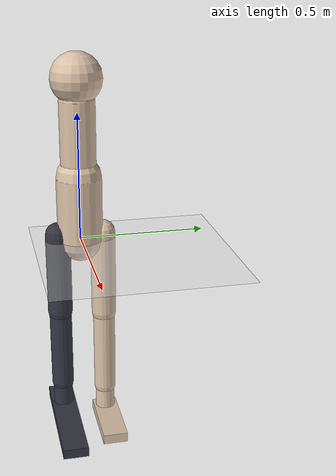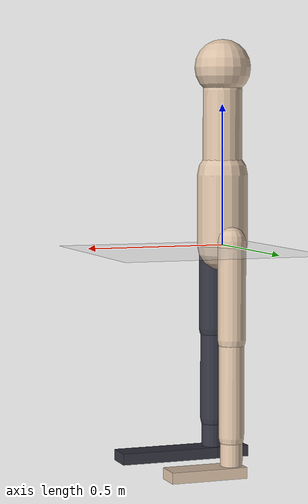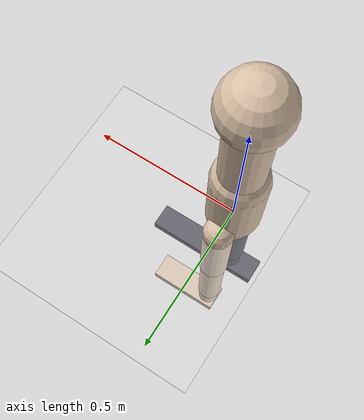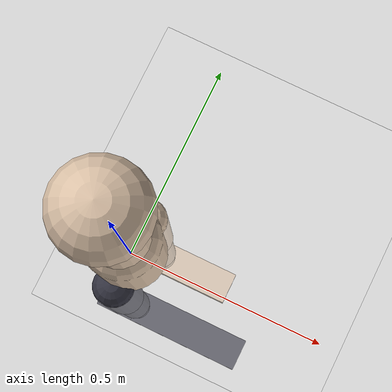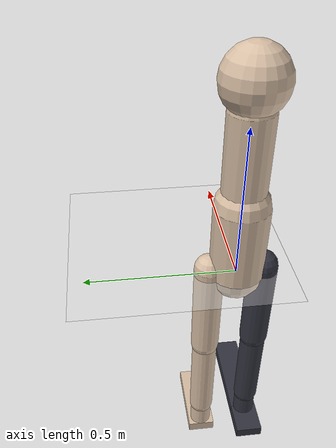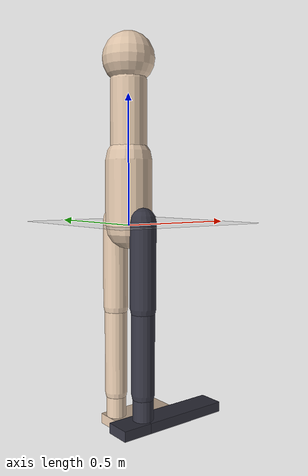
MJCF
<mujoco model="dummy_human_prosthetic">
  <compiler angle="radian" coordinate="local"/>
  <option timestep="0.002" gravity="0 0 -9.81" integrator="RK4"/>
  <size njmax="6000" nconmax="1200"/>

  <default>
    <joint damping="3" armature="0.03" limited="true"/>
    <geom friction="2.8 1.0 0.02" density="800" contype="1" conaffinity="1"/>
  </default>

  <asset>
    <texture type="skybox" builtin="gradient"
             rgb1="0.4 0.6 0.9" rgb2="0.0 0.0 0.0" width="512" height="512"/>
    <material name="mat_floor" rgba="0.92 0.92 0.92 1"/>
    <material name="mat_body"  rgba="0.85 0.75 0.65 1"/>
    <material name="mat_pros"  rgba="0.2 0.2 0.25 1"/>
    <material name="mat_pin"   rgba="1 0 0 0.6"/>
  </asset>

  <worldbody>
    <!-- Floor -->
    <geom name="floor" type="plane" size="6 6 0.1" material="mat_floor"
          contype="1" conaffinity="1" friction="3.2 1.2 0.02"/>

    <!-- Mocap "pin target" we can move at runtime -->
    <body name="pin_mocap" mocap="true" pos="0 0 0">
      <site name="pin_site" pos="0 0 0" size="0.012" material="mat_pin"/>
    </body>

    <!-- Pelvis with "harness": allow XY translation + Z height controlled + yaw only -->
    <!-- NOTE: pelvis pos is 0, height comes from pelvis_tz joint (set in Python + actuator) -->
    <body name="pelvis" pos="0 0 0">
      <!-- Horizontal drift allowed, but damped -->
      <joint name="pelvis_tx" type="slide" axis="1 0 0" range="-1.0 1.0" damping="5"/>
      <joint name="pelvis_ty" type="slide" axis="0 1 0" range="-1.0 1.0" damping="5"/>

      <!-- Vertical height (harness controlled) -->
      <joint name="pelvis_tz" type="slide" axis="0 0 1" range="0.6 1.2" damping="20"/>

      <!-- Keep torso upright: yaw only (no pitch/roll) -->
      <joint name="pelvis_yaw" type="hinge" axis="0 0 1" range="-3.14 3.14" damping="2"/>

      <geom name="pelvis_geom" type="capsule" fromto="0 0 0  0 0 0.25" size="0.09" material="mat_body"/>

      <!-- Left leg: passive (visual only) -->
      <body name="left_hip" pos="0 0.09 0.02">
        <joint name="l_hip" type="hinge" axis="0 1 0" range="-1.2 1.2"/>
        <geom type="capsule" fromto="0 0 0  0 0 -0.35" size="0.05" material="mat_body"/>
        <body name="left_knee" pos="0 0 -0.35">
          <joint name="l_knee" type="hinge" axis="0 1 0" range="-2.2 0.2"/>
          <geom type="capsule" fromto="0 0 0  0 0 -0.35" size="0.045" material="mat_body"/>
          <body name="left_ankle" pos="0 0 -0.35">
            <joint name="l_ankle" type="hinge" axis="0 1 0" range="-0.7 0.7"/>
            <geom type="capsule" fromto="0 0 0  0 0 -0.10" size="0.04" material="mat_body"/>
            <geom name="l_foot" type="box" pos="0.10 0 -0.12" size="0.14 0.05 0.02" material="mat_body"/>
          </body>
        </body>
      </body>

      <!-- Right prosthetic leg: actuated -->
      <body name="right_hip" pos="0 -0.09 0.02">
        <joint name="r_hip" type="hinge" axis="0 1 0" range="-0.8 0.8"/>
        <geom name="r_thigh" type="capsule" fromto="0 0 0  0 0 -0.33" size="0.05" material="mat_pros"/>

        <body name="right_knee" pos="0 0 -0.33">
          <joint name="r_knee" type="hinge" axis="0 1 0" range="-0.9 0.1"/>
          <geom name="r_shank" type="capsule" fromto="0 0 0  0 0 -0.33" size="0.045" material="mat_pros"/>

          <body name="right_ankle" pos="0 0 -0.33">
            <joint name="r_ankle" type="hinge" axis="0 1 0" range="-0.9 0.9"/>
            <geom name="r_ankle_link" type="capsule" fromto="0 0 0  0 0 -0.10" size="0.04" material="mat_pros"/>

            <geom name="r_foot" type="box" pos="0.18 0 -0.12" size="0.18 0.05 0.02"
                  material="mat_pros" friction="3.2 1.2 0.02"/>
            <geom name="r_heel" type="box" pos="-0.06 0 -0.12" size="0.06 0.05 0.02"
                  material="mat_pros" friction="3.2 1.2 0.02"/>

            <!-- Stance pin site -->
            <site name="r_pin" pos="0.03 0 -0.12" size="0.012" material="mat_pin"/>
            <site name="r_toe" pos="0.18 0 -0.12" size="0.01"/>
          </body>
        </body>
      </body>

      <!-- Upper body marker -->
      <body name="upper" pos="0 0 0.25">
        <geom type="capsule" fromto="0 0 0  0 0 0.30" size="0.07" material="mat_body"/>
        <geom type="sphere" pos="0 0 0.38" size="0.10" material="mat_body"/>
      </body>
    </body>

    <light pos="0 0 3" dir="0 0 -1"/>
    <camera name="cam" mode="trackcom" pos="2.8 0 1.2" xyaxes="0 1 0  0 0 1"/>
  </worldbody>

  <actuator>
    <!-- Harness: hold pelvis height -->
    <position name="pelvis_height" joint="pelvis_tz" kp="2500" ctrlrange="0.75 1.10"/>

    <!-- Prosthetic leg joint position actuators -->
    <position name="m_r_hip"   joint="r_hip"   kp="120" ctrlrange="-0.8 0.8"/>
    <position name="m_r_knee"  joint="r_knee"  kp="180" ctrlrange="-0.9 0.1"/>
    <position name="m_r_ankle" joint="r_ankle" kp="120" ctrlrange="-0.9 0.9"/>
  </actuator>

  <!-- Stance pin constraint -->
  <equality>
    <connect name="stance_pin" site1="r_pin" site2="pin_site"
             solref="0.01 1" solimp="0.95 0.99 0.001"/>
  </equality>
</mujoco>
